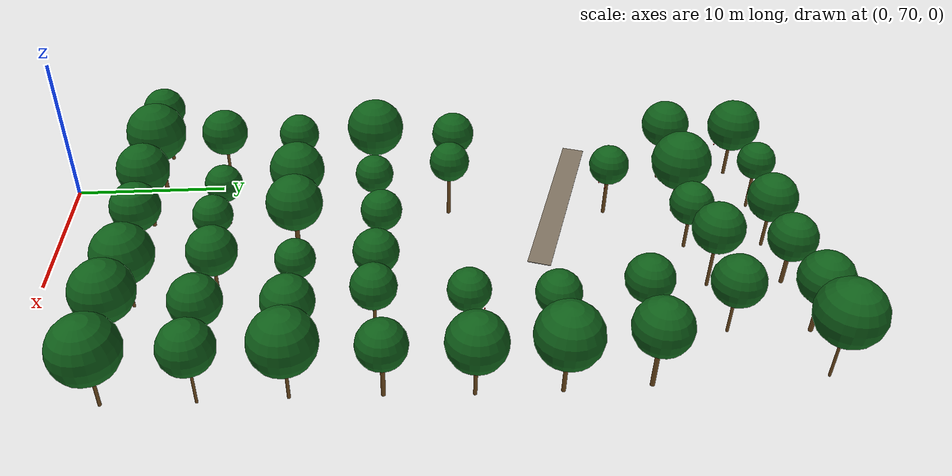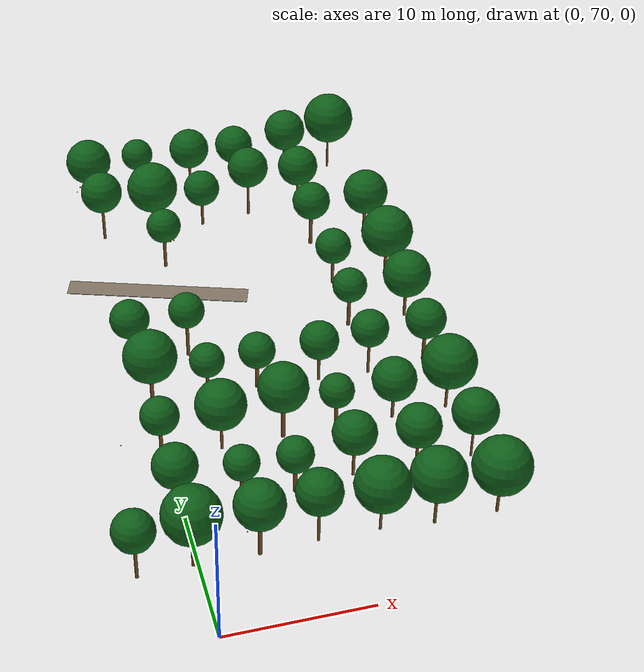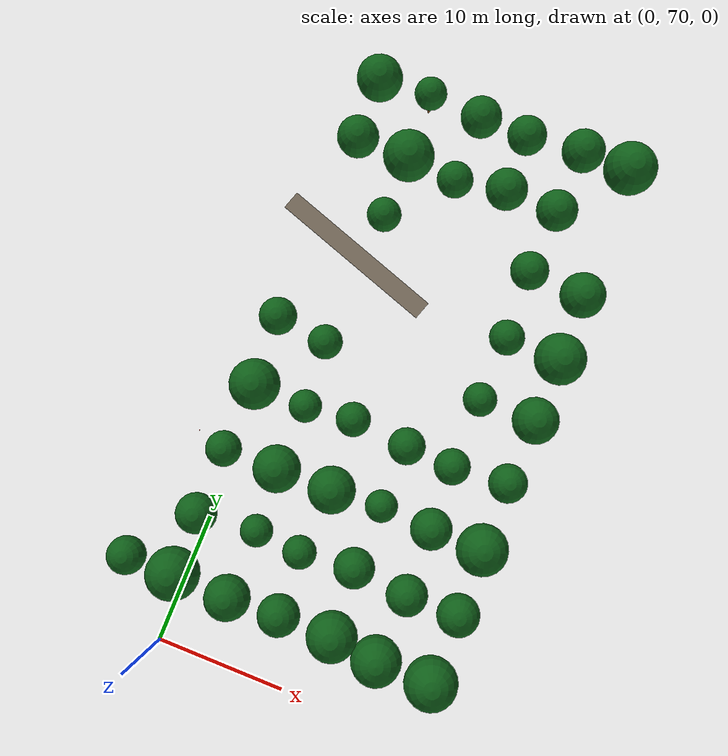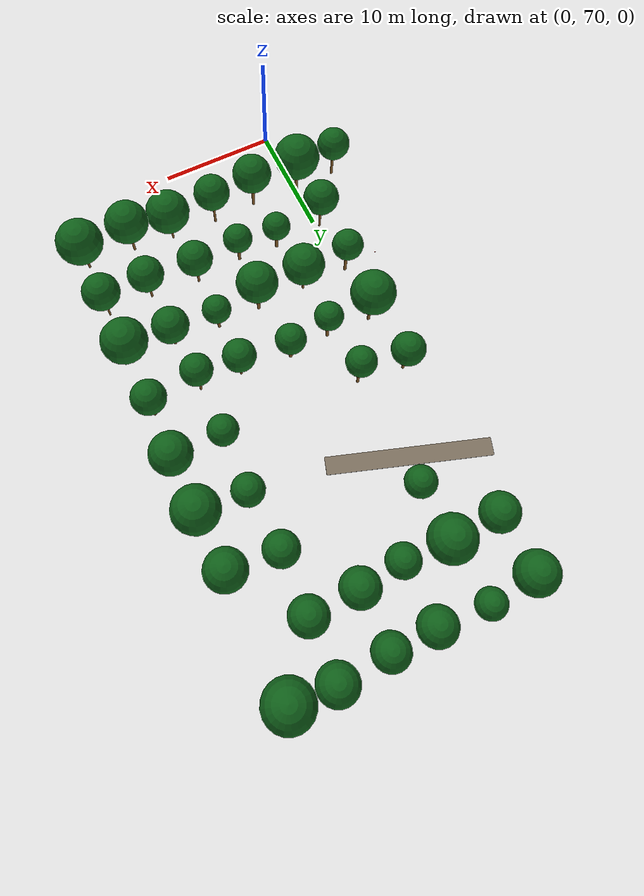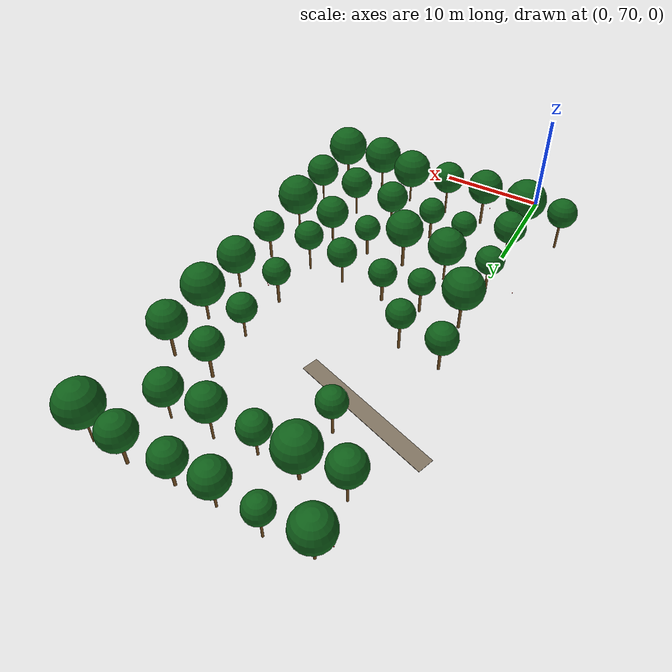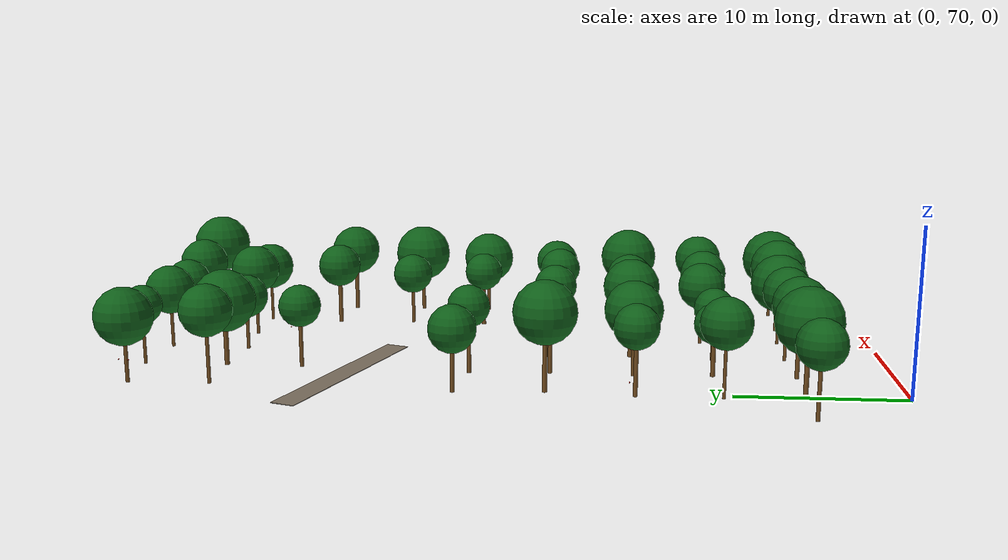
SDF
<sdf version="1.9">
 <world name="cheongsong_orchard">
  <model name="road_52">
   <static>true</static>
   <pose>2.8 103.1 0.02 0 0 2.8174</pose>
   <link name="link">
    <collision name="collision">
     <geometry><box><size>13.6 1.5 0.04</size></box></geometry>
     <surface><friction><ode><mu>0.9</mu><mu2>0.9</mu2></ode></friction></surface>
    </collision>
    <visual name="visual">
     <geometry><box><size>13.6 1.5 0.04</size></box></geometry>
     <material><ambient>0.4 0.35 0.28 1</ambient><diffuse>0.5 0.45 0.38 1</diffuse></material>
    </visual>
   </link>
  </model>
  <model name="apple_tree_1998">
   <static>true</static>
   <pose>-3.95 75.89 0 0 0 0</pose>
   <link name="link">
    <collision name="trunk_col">
     <pose>0 0 1.41 0 0 0</pose>
     <geometry><cylinder><radius>0.113</radius><length>2.83</length></cylinder></geometry>
    </collision>
    <visual name="trunk_vis">
     <pose>0 0 1.41 0 0 0</pose>
     <geometry><cylinder><radius>0.113</radius><length>2.83</length></cylinder></geometry>
     <material><ambient>0.35 0.22 0.08 1</ambient><diffuse>0.45 0.30 0.12 1</diffuse></material>
    </visual>
    <collision name="canopy_col">
     <pose>0 0 4.25 0 0 0</pose>
     <geometry><sphere><radius>1.42</radius></sphere></geometry>
    </collision>
    <visual name="canopy_vis">
     <pose>0 0 4.25 0 0 0</pose>
     <geometry><sphere><radius>1.42</radius></sphere></geometry>
     <material><ambient>0.04 0.28 0.06 1</ambient><diffuse>0.06 0.38 0.10 1</diffuse></material>
    </visual>
   </link>
  </model>
  <model name="apple_tree_1999">
   <static>true</static>
   <pose>-0.29 75.99 0 0 0 0</pose>
   <link name="link">
    <collision name="trunk_col">
     <pose>0 0 1.32 0 0 0</pose>
     <geometry><cylinder><radius>0.143</radius><length>2.63</length></cylinder></geometry>
    </collision>
    <visual name="trunk_vis">
     <pose>0 0 1.32 0 0 0</pose>
     <geometry><cylinder><radius>0.143</radius><length>2.63</length></cylinder></geometry>
     <material><ambient>0.35 0.22 0.08 1</ambient><diffuse>0.45 0.30 0.12 1</diffuse></material>
    </visual>
    <collision name="canopy_col">
     <pose>0 0 4.60 0 0 0</pose>
     <geometry><sphere><radius>1.97</radius></sphere></geometry>
    </collision>
    <visual name="canopy_vis">
     <pose>0 0 4.60 0 0 0</pose>
     <geometry><sphere><radius>1.97</radius></sphere></geometry>
     <material><ambient>0.04 0.28 0.06 1</ambient><diffuse>0.06 0.38 0.10 1</diffuse></material>
    </visual>
   </link>
  </model>
  <model name="apple_tree_2000">
   <static>true</static>
   <pose>3.98 75.85 0 0 0 0</pose>
   <link name="link">
    <collision name="trunk_col">
     <pose>0 0 1.42 0 0 0</pose>
     <geometry><cylinder><radius>0.130</radius><length>2.84</length></cylinder></geometry>
    </collision>
    <visual name="trunk_vis">
     <pose>0 0 1.42 0 0 0</pose>
     <geometry><cylinder><radius>0.130</radius><length>2.84</length></cylinder></geometry>
     <material><ambient>0.35 0.22 0.08 1</ambient><diffuse>0.45 0.30 0.12 1</diffuse></material>
    </visual>
    <collision name="canopy_col">
     <pose>0 0 4.53 0 0 0</pose>
     <geometry><sphere><radius>1.69</radius></sphere></geometry>
    </collision>
    <visual name="canopy_vis">
     <pose>0 0 4.53 0 0 0</pose>
     <geometry><sphere><radius>1.69</radius></sphere></geometry>
     <material><ambient>0.04 0.28 0.06 1</ambient><diffuse>0.06 0.38 0.10 1</diffuse></material>
    </visual>
   </link>
  </model>
  <model name="apple_tree_2001">
   <static>true</static>
   <pose>7.87 76.05 0 0 0 0</pose>
   <link name="link">
    <collision name="trunk_col">
     <pose>0 0 1.44 0 0 0</pose>
     <geometry><cylinder><radius>0.099</radius><length>2.88</length></cylinder></geometry>
    </collision>
    <visual name="trunk_vis">
     <pose>0 0 1.44 0 0 0</pose>
     <geometry><cylinder><radius>0.099</radius><length>2.88</length></cylinder></geometry>
     <material><ambient>0.35 0.22 0.08 1</ambient><diffuse>0.45 0.30 0.12 1</diffuse></material>
    </visual>
    <collision name="canopy_col">
     <pose>0 0 4.44 0 0 0</pose>
     <geometry><sphere><radius>1.56</radius></sphere></geometry>
    </collision>
    <visual name="canopy_vis">
     <pose>0 0 4.44 0 0 0</pose>
     <geometry><sphere><radius>1.56</radius></sphere></geometry>
     <material><ambient>0.04 0.28 0.06 1</ambient><diffuse>0.06 0.38 0.10 1</diffuse></material>
    </visual>
   </link>
  </model>
  <model name="apple_tree_2002">
   <static>true</static>
   <pose>11.98 75.99 0 0 0 0</pose>
   <link name="link">
    <collision name="trunk_col">
     <pose>0 0 1.11 0 0 0</pose>
     <geometry><cylinder><radius>0.090</radius><length>2.22</length></cylinder></geometry>
    </collision>
    <visual name="trunk_vis">
     <pose>0 0 1.11 0 0 0</pose>
     <geometry><cylinder><radius>0.090</radius><length>2.22</length></cylinder></geometry>
     <material><ambient>0.35 0.22 0.08 1</ambient><diffuse>0.45 0.30 0.12 1</diffuse></material>
    </visual>
    <collision name="canopy_col">
     <pose>0 0 4.10 0 0 0</pose>
     <geometry><sphere><radius>1.88</radius></sphere></geometry>
    </collision>
    <visual name="canopy_vis">
     <pose>0 0 4.10 0 0 0</pose>
     <geometry><sphere><radius>1.88</radius></sphere></geometry>
     <material><ambient>0.04 0.28 0.06 1</ambient><diffuse>0.06 0.38 0.10 1</diffuse></material>
    </visual>
   </link>
  </model>
  <model name="apple_tree_2003">
   <static>true</static>
   <pose>15.55 75.66 0 0 0 0</pose>
   <link name="link">
    <collision name="trunk_col">
     <pose>0 0 1.28 0 0 0</pose>
     <geometry><cylinder><radius>0.103</radius><length>2.57</length></cylinder></geometry>
    </collision>
    <visual name="trunk_vis">
     <pose>0 0 1.28 0 0 0</pose>
     <geometry><cylinder><radius>0.103</radius><length>2.57</length></cylinder></geometry>
     <material><ambient>0.35 0.22 0.08 1</ambient><diffuse>0.45 0.30 0.12 1</diffuse></material>
    </visual>
    <collision name="canopy_col">
     <pose>0 0 4.43 0 0 0</pose>
     <geometry><sphere><radius>1.86</radius></sphere></geometry>
    </collision>
    <visual name="canopy_vis">
     <pose>0 0 4.43 0 0 0</pose>
     <geometry><sphere><radius>1.86</radius></sphere></geometry>
     <material><ambient>0.04 0.28 0.06 1</ambient><diffuse>0.06 0.38 0.10 1</diffuse></material>
    </visual>
   </link>
  </model>
  <model name="apple_tree_2004">
   <static>true</static>
   <pose>19.80 75.60 0 0 0 0</pose>
   <link name="link">
    <collision name="trunk_col">
     <pose>0 0 1.11 0 0 0</pose>
     <geometry><cylinder><radius>0.102</radius><length>2.22</length></cylinder></geometry>
    </collision>
    <visual name="trunk_vis">
     <pose>0 0 1.11 0 0 0</pose>
     <geometry><cylinder><radius>0.102</radius><length>2.22</length></cylinder></geometry>
     <material><ambient>0.35 0.22 0.08 1</ambient><diffuse>0.45 0.30 0.12 1</diffuse></material>
    </visual>
    <collision name="canopy_col">
     <pose>0 0 4.20 0 0 0</pose>
     <geometry><sphere><radius>1.99</radius></sphere></geometry>
    </collision>
    <visual name="canopy_vis">
     <pose>0 0 4.20 0 0 0</pose>
     <geometry><sphere><radius>1.99</radius></sphere></geometry>
     <material><ambient>0.04 0.28 0.06 1</ambient><diffuse>0.06 0.38 0.10 1</diffuse></material>
    </visual>
   </link>
  </model>
  <model name="apple_tree_2054">
   <static>true</static>
   <pose>-0.40 80.55 0 0 0 0</pose>
   <link name="link">
    <collision name="trunk_col">
     <pose>0 0 1.44 0 0 0</pose>
     <geometry><cylinder><radius>0.097</radius><length>2.88</length></cylinder></geometry>
    </collision>
    <visual name="trunk_vis">
     <pose>0 0 1.44 0 0 0</pose>
     <geometry><cylinder><radius>0.097</radius><length>2.88</length></cylinder></geometry>
     <material><ambient>0.35 0.22 0.08 1</ambient><diffuse>0.45 0.30 0.12 1</diffuse></material>
    </visual>
    <collision name="canopy_col">
     <pose>0 0 4.40 0 0 0</pose>
     <geometry><sphere><radius>1.52</radius></sphere></geometry>
    </collision>
    <visual name="canopy_vis">
     <pose>0 0 4.40 0 0 0</pose>
     <geometry><sphere><radius>1.52</radius></sphere></geometry>
     <material><ambient>0.04 0.28 0.06 1</ambient><diffuse>0.06 0.38 0.10 1</diffuse></material>
    </visual>
   </link>
  </model>
  <model name="apple_tree_2055">
   <static>true</static>
   <pose>4.01 80.84 0 0 0 0</pose>
   <link name="link">
    <collision name="trunk_col">
     <pose>0 0 1.02 0 0 0</pose>
     <geometry><cylinder><radius>0.137</radius><length>2.04</length></cylinder></geometry>
    </collision>
    <visual name="trunk_vis">
     <pose>0 0 1.02 0 0 0</pose>
     <geometry><cylinder><radius>0.137</radius><length>2.04</length></cylinder></geometry>
     <material><ambient>0.35 0.22 0.08 1</ambient><diffuse>0.45 0.30 0.12 1</diffuse></material>
    </visual>
    <collision name="canopy_col">
     <pose>0 0 3.26 0 0 0</pose>
     <geometry><sphere><radius>1.22</radius></sphere></geometry>
    </collision>
    <visual name="canopy_vis">
     <pose>0 0 3.26 0 0 0</pose>
     <geometry><sphere><radius>1.22</radius></sphere></geometry>
     <material><ambient>0.04 0.28 0.06 1</ambient><diffuse>0.06 0.38 0.10 1</diffuse></material>
    </visual>
   </link>
  </model>
  <model name="apple_tree_2056">
   <static>true</static>
   <pose>7.53 80.58 0 0 0 0</pose>
   <link name="link">
    <collision name="trunk_col">
     <pose>0 0 1.07 0 0 0</pose>
     <geometry><cylinder><radius>0.134</radius><length>2.13</length></cylinder></geometry>
    </collision>
    <visual name="trunk_vis">
     <pose>0 0 1.07 0 0 0</pose>
     <geometry><cylinder><radius>0.134</radius><length>2.13</length></cylinder></geometry>
     <material><ambient>0.35 0.22 0.08 1</ambient><diffuse>0.45 0.30 0.12 1</diffuse></material>
    </visual>
    <collision name="canopy_col">
     <pose>0 0 3.39 0 0 0</pose>
     <geometry><sphere><radius>1.26</radius></sphere></geometry>
    </collision>
    <visual name="canopy_vis">
     <pose>0 0 3.39 0 0 0</pose>
     <geometry><sphere><radius>1.26</radius></sphere></geometry>
     <material><ambient>0.04 0.28 0.06 1</ambient><diffuse>0.06 0.38 0.10 1</diffuse></material>
    </visual>
   </link>
  </model>
  <model name="apple_tree_2057">
   <static>true</static>
   <pose>11.66 81.08 0 0 0 0</pose>
   <link name="link">
    <collision name="trunk_col">
     <pose>0 0 1.18 0 0 0</pose>
     <geometry><cylinder><radius>0.105</radius><length>2.36</length></cylinder></geometry>
    </collision>
    <visual name="trunk_vis">
     <pose>0 0 1.18 0 0 0</pose>
     <geometry><cylinder><radius>0.105</radius><length>2.36</length></cylinder></geometry>
     <material><ambient>0.35 0.22 0.08 1</ambient><diffuse>0.45 0.30 0.12 1</diffuse></material>
    </visual>
    <collision name="canopy_col">
     <pose>0 0 3.88 0 0 0</pose>
     <geometry><sphere><radius>1.52</radius></sphere></geometry>
    </collision>
    <visual name="canopy_vis">
     <pose>0 0 3.88 0 0 0</pose>
     <geometry><sphere><radius>1.52</radius></sphere></geometry>
     <material><ambient>0.04 0.28 0.06 1</ambient><diffuse>0.06 0.38 0.10 1</diffuse></material>
    </visual>
   </link>
  </model>
  <model name="apple_tree_2058">
   <static>true</static>
   <pose>15.93 80.69 0 0 0 0</pose>
   <link name="link">
    <collision name="trunk_col">
     <pose>0 0 1.16 0 0 0</pose>
     <geometry><cylinder><radius>0.095</radius><length>2.33</length></cylinder></geometry>
    </collision>
    <visual name="trunk_vis">
     <pose>0 0 1.16 0 0 0</pose>
     <geometry><cylinder><radius>0.095</radius><length>2.33</length></cylinder></geometry>
     <material><ambient>0.35 0.22 0.08 1</ambient><diffuse>0.45 0.30 0.12 1</diffuse></material>
    </visual>
    <collision name="canopy_col">
     <pose>0 0 3.87 0 0 0</pose>
     <geometry><sphere><radius>1.54</radius></sphere></geometry>
    </collision>
    <visual name="canopy_vis">
     <pose>0 0 3.87 0 0 0</pose>
     <geometry><sphere><radius>1.54</radius></sphere></geometry>
     <material><ambient>0.04 0.28 0.06 1</ambient><diffuse>0.06 0.38 0.10 1</diffuse></material>
    </visual>
   </link>
  </model>
  <model name="apple_tree_2059">
   <static>true</static>
   <pose>19.86 80.80 0 0 0 0</pose>
   <link name="link">
    <collision name="trunk_col">
     <pose>0 0 1.27 0 0 0</pose>
     <geometry><cylinder><radius>0.083</radius><length>2.55</length></cylinder></geometry>
    </collision>
    <visual name="trunk_vis">
     <pose>0 0 1.27 0 0 0</pose>
     <geometry><cylinder><radius>0.083</radius><length>2.55</length></cylinder></geometry>
     <material><ambient>0.35 0.22 0.08 1</ambient><diffuse>0.45 0.30 0.12 1</diffuse></material>
    </visual>
    <collision name="canopy_col">
     <pose>0 0 4.14 0 0 0</pose>
     <geometry><sphere><radius>1.59</radius></sphere></geometry>
    </collision>
    <visual name="canopy_vis">
     <pose>0 0 4.14 0 0 0</pose>
     <geometry><sphere><radius>1.59</radius></sphere></geometry>
     <material><ambient>0.04 0.28 0.06 1</ambient><diffuse>0.06 0.38 0.10 1</diffuse></material>
    </visual>
   </link>
  </model>
  <model name="apple_tree_2111">
   <static>true</static>
   <pose>-0.40 85.56 0 0 0 0</pose>
   <link name="link">
    <collision name="trunk_col">
     <pose>0 0 1.38 0 0 0</pose>
     <geometry><cylinder><radius>0.128</radius><length>2.77</length></cylinder></geometry>
    </collision>
    <visual name="trunk_vis">
     <pose>0 0 1.38 0 0 0</pose>
     <geometry><cylinder><radius>0.128</radius><length>2.77</length></cylinder></geometry>
     <material><ambient>0.35 0.22 0.08 1</ambient><diffuse>0.45 0.30 0.12 1</diffuse></material>
    </visual>
    <collision name="canopy_col">
     <pose>0 0 4.10 0 0 0</pose>
     <geometry><sphere><radius>1.33</radius></sphere></geometry>
    </collision>
    <visual name="canopy_vis">
     <pose>0 0 4.10 0 0 0</pose>
     <geometry><sphere><radius>1.33</radius></sphere></geometry>
     <material><ambient>0.04 0.28 0.06 1</ambient><diffuse>0.06 0.38 0.10 1</diffuse></material>
    </visual>
   </link>
  </model>
  <model name="apple_tree_2112">
   <static>true</static>
   <pose>3.75 85.64 0 0 0 0</pose>
   <link name="link">
    <collision name="trunk_col">
     <pose>0 0 1.15 0 0 0</pose>
     <geometry><cylinder><radius>0.099</radius><length>2.29</length></cylinder></geometry>
    </collision>
    <visual name="trunk_vis">
     <pose>0 0 1.15 0 0 0</pose>
     <geometry><cylinder><radius>0.099</radius><length>2.29</length></cylinder></geometry>
     <material><ambient>0.35 0.22 0.08 1</ambient><diffuse>0.45 0.30 0.12 1</diffuse></material>
    </visual>
    <collision name="canopy_col">
     <pose>0 0 4.07 0 0 0</pose>
     <geometry><sphere><radius>1.77</radius></sphere></geometry>
    </collision>
    <visual name="canopy_vis">
     <pose>0 0 4.07 0 0 0</pose>
     <geometry><sphere><radius>1.77</radius></sphere></geometry>
     <material><ambient>0.04 0.28 0.06 1</ambient><diffuse>0.06 0.38 0.10 1</diffuse></material>
    </visual>
   </link>
  </model>
  <model name="apple_tree_2113">
   <static>true</static>
   <pose>8.05 85.74 0 0 0 0</pose>
   <link name="link">
    <collision name="trunk_col">
     <pose>0 0 1.40 0 0 0</pose>
     <geometry><cylinder><radius>0.147</radius><length>2.81</length></cylinder></geometry>
    </collision>
    <visual name="trunk_vis">
     <pose>0 0 1.40 0 0 0</pose>
     <geometry><cylinder><radius>0.147</radius><length>2.81</length></cylinder></geometry>
     <material><ambient>0.35 0.22 0.08 1</ambient><diffuse>0.45 0.30 0.12 1</diffuse></material>
    </visual>
    <collision name="canopy_col">
     <pose>0 0 4.55 0 0 0</pose>
     <geometry><sphere><radius>1.75</radius></sphere></geometry>
    </collision>
    <visual name="canopy_vis">
     <pose>0 0 4.55 0 0 0</pose>
     <geometry><sphere><radius>1.75</radius></sphere></geometry>
     <material><ambient>0.04 0.28 0.06 1</ambient><diffuse>0.06 0.38 0.10 1</diffuse></material>
    </visual>
   </link>
  </model>
  <model name="apple_tree_2114">
   <static>true</static>
   <pose>11.85 85.90 0 0 0 0</pose>
   <link name="link">
    <collision name="trunk_col">
     <pose>0 0 1.01 0 0 0</pose>
     <geometry><cylinder><radius>0.130</radius><length>2.01</length></cylinder></geometry>
    </collision>
    <visual name="trunk_vis">
     <pose>0 0 1.01 0 0 0</pose>
     <geometry><cylinder><radius>0.130</radius><length>2.01</length></cylinder></geometry>
     <material><ambient>0.35 0.22 0.08 1</ambient><diffuse>0.45 0.30 0.12 1</diffuse></material>
    </visual>
    <collision name="canopy_col">
     <pose>0 0 3.23 0 0 0</pose>
     <geometry><sphere><radius>1.22</radius></sphere></geometry>
    </collision>
    <visual name="canopy_vis">
     <pose>0 0 3.23 0 0 0</pose>
     <geometry><sphere><radius>1.22</radius></sphere></geometry>
     <material><ambient>0.04 0.28 0.06 1</ambient><diffuse>0.06 0.38 0.10 1</diffuse></material>
    </visual>
   </link>
  </model>
  <model name="apple_tree_2115">
   <static>true</static>
   <pose>15.85 85.73 0 0 0 0</pose>
   <link name="link">
    <collision name="trunk_col">
     <pose>0 0 0.98 0 0 0</pose>
     <geometry><cylinder><radius>0.111</radius><length>1.97</length></cylinder></geometry>
    </collision>
    <visual name="trunk_vis">
     <pose>0 0 0.98 0 0 0</pose>
     <geometry><cylinder><radius>0.111</radius><length>1.97</length></cylinder></geometry>
     <material><ambient>0.35 0.22 0.08 1</ambient><diffuse>0.45 0.30 0.12 1</diffuse></material>
    </visual>
    <collision name="canopy_col">
     <pose>0 0 3.53 0 0 0</pose>
     <geometry><sphere><radius>1.56</radius></sphere></geometry>
    </collision>
    <visual name="canopy_vis">
     <pose>0 0 3.53 0 0 0</pose>
     <geometry><sphere><radius>1.56</radius></sphere></geometry>
     <material><ambient>0.04 0.28 0.06 1</ambient><diffuse>0.06 0.38 0.10 1</diffuse></material>
    </visual>
   </link>
  </model>
  <model name="apple_tree_2116">
   <static>true</static>
   <pose>19.76 85.77 0 0 0 0</pose>
   <link name="link">
    <collision name="trunk_col">
     <pose>0 0 1.14 0 0 0</pose>
     <geometry><cylinder><radius>0.099</radius><length>2.29</length></cylinder></geometry>
    </collision>
    <visual name="trunk_vis">
     <pose>0 0 1.14 0 0 0</pose>
     <geometry><cylinder><radius>0.099</radius><length>2.29</length></cylinder></geometry>
     <material><ambient>0.35 0.22 0.08 1</ambient><diffuse>0.45 0.30 0.12 1</diffuse></material>
    </visual>
    <collision name="canopy_col">
     <pose>0 0 4.22 0 0 0</pose>
     <geometry><sphere><radius>1.93</radius></sphere></geometry>
    </collision>
    <visual name="canopy_vis">
     <pose>0 0 4.22 0 0 0</pose>
     <geometry><sphere><radius>1.93</radius></sphere></geometry>
     <material><ambient>0.04 0.28 0.06 1</ambient><diffuse>0.06 0.38 0.10 1</diffuse></material>
    </visual>
   </link>
  </model>
  <model name="apple_tree_2167">
   <static>true</static>
   <pose>-0.00 90.76 0 0 0 0</pose>
   <link name="link">
    <collision name="trunk_col">
     <pose>0 0 1.43 0 0 0</pose>
     <geometry><cylinder><radius>0.136</radius><length>2.86</length></cylinder></geometry>
    </collision>
    <visual name="trunk_vis">
     <pose>0 0 1.43 0 0 0</pose>
     <geometry><cylinder><radius>0.136</radius><length>2.86</length></cylinder></geometry>
     <material><ambient>0.35 0.22 0.08 1</ambient><diffuse>0.45 0.30 0.12 1</diffuse></material>
    </visual>
    <collision name="canopy_col">
     <pose>0 0 4.73 0 0 0</pose>
     <geometry><sphere><radius>1.88</radius></sphere></geometry>
    </collision>
    <visual name="canopy_vis">
     <pose>0 0 4.73 0 0 0</pose>
     <geometry><sphere><radius>1.88</radius></sphere></geometry>
     <material><ambient>0.04 0.28 0.06 1</ambient><diffuse>0.06 0.38 0.10 1</diffuse></material>
    </visual>
   </link>
  </model>
  <model name="apple_tree_2168">
   <static>true</static>
   <pose>3.91 90.64 0 0 0 0</pose>
   <link name="link">
    <collision name="trunk_col">
     <pose>0 0 1.20 0 0 0</pose>
     <geometry><cylinder><radius>0.129</radius><length>2.40</length></cylinder></geometry>
    </collision>
    <visual name="trunk_vis">
     <pose>0 0 1.20 0 0 0</pose>
     <geometry><cylinder><radius>0.129</radius><length>2.40</length></cylinder></geometry>
     <material><ambient>0.35 0.22 0.08 1</ambient><diffuse>0.45 0.30 0.12 1</diffuse></material>
    </visual>
    <collision name="canopy_col">
     <pose>0 0 3.63 0 0 0</pose>
     <geometry><sphere><radius>1.23</radius></sphere></geometry>
    </collision>
    <visual name="canopy_vis">
     <pose>0 0 3.63 0 0 0</pose>
     <geometry><sphere><radius>1.23</radius></sphere></geometry>
     <material><ambient>0.04 0.28 0.06 1</ambient><diffuse>0.06 0.38 0.10 1</diffuse></material>
    </visual>
   </link>
  </model>
  <model name="apple_tree_2169">
   <static>true</static>
   <pose>7.55 91.04 0 0 0 0</pose>
   <link name="link">
    <collision name="trunk_col">
     <pose>0 0 1.05 0 0 0</pose>
     <geometry><cylinder><radius>0.150</radius><length>2.09</length></cylinder></geometry>
    </collision>
    <visual name="trunk_vis">
     <pose>0 0 1.05 0 0 0</pose>
     <geometry><cylinder><radius>0.150</radius><length>2.09</length></cylinder></geometry>
     <material><ambient>0.35 0.22 0.08 1</ambient><diffuse>0.45 0.30 0.12 1</diffuse></material>
    </visual>
    <collision name="canopy_col">
     <pose>0 0 3.39 0 0 0</pose>
     <geometry><sphere><radius>1.30</radius></sphere></geometry>
    </collision>
    <visual name="canopy_vis">
     <pose>0 0 3.39 0 0 0</pose>
     <geometry><sphere><radius>1.30</radius></sphere></geometry>
     <material><ambient>0.04 0.28 0.06 1</ambient><diffuse>0.06 0.38 0.10 1</diffuse></material>
    </visual>
   </link>
  </model>
  <model name="apple_tree_2170">
   <static>true</static>
   <pose>11.94 90.68 0 0 0 0</pose>
   <link name="link">
    <collision name="trunk_col">
     <pose>0 0 1.14 0 0 0</pose>
     <geometry><cylinder><radius>0.102</radius><length>2.27</length></cylinder></geometry>
    </collision>
    <visual name="trunk_vis">
     <pose>0 0 1.14 0 0 0</pose>
     <geometry><cylinder><radius>0.102</radius><length>2.27</length></cylinder></geometry>
     <material><ambient>0.35 0.22 0.08 1</ambient><diffuse>0.45 0.30 0.12 1</diffuse></material>
    </visual>
    <collision name="canopy_col">
     <pose>0 0 3.67 0 0 0</pose>
     <geometry><sphere><radius>1.39</radius></sphere></geometry>
    </collision>
    <visual name="canopy_vis">
     <pose>0 0 3.67 0 0 0</pose>
     <geometry><sphere><radius>1.39</radius></sphere></geometry>
     <material><ambient>0.04 0.28 0.06 1</ambient><diffuse>0.06 0.38 0.10 1</diffuse></material>
    </visual>
   </link>
  </model>
  <model name="apple_tree_2171">
   <static>true</static>
   <pose>15.55 90.53 0 0 0 0</pose>
   <link name="link">
    <collision name="trunk_col">
     <pose>0 0 1.39 0 0 0</pose>
     <geometry><cylinder><radius>0.098</radius><length>2.78</length></cylinder></geometry>
    </collision>
    <visual name="trunk_vis">
     <pose>0 0 1.39 0 0 0</pose>
     <geometry><cylinder><radius>0.098</radius><length>2.78</length></cylinder></geometry>
     <material><ambient>0.35 0.22 0.08 1</ambient><diffuse>0.45 0.30 0.12 1</diffuse></material>
    </visual>
    <collision name="canopy_col">
     <pose>0 0 4.13 0 0 0</pose>
     <geometry><sphere><radius>1.35</radius></sphere></geometry>
    </collision>
    <visual name="canopy_vis">
     <pose>0 0 4.13 0 0 0</pose>
     <geometry><sphere><radius>1.35</radius></sphere></geometry>
     <material><ambient>0.04 0.28 0.06 1</ambient><diffuse>0.06 0.38 0.10 1</diffuse></material>
    </visual>
   </link>
  </model>
  <model name="apple_tree_2172">
   <static>true</static>
   <pose>19.81 90.91 0 0 0 0</pose>
   <link name="link">
    <collision name="trunk_col">
     <pose>0 0 1.17 0 0 0</pose>
     <geometry><cylinder><radius>0.130</radius><length>2.34</length></cylinder></geometry>
    </collision>
    <visual name="trunk_vis">
     <pose>0 0 1.17 0 0 0</pose>
     <geometry><cylinder><radius>0.130</radius><length>2.34</length></cylinder></geometry>
     <material><ambient>0.35 0.22 0.08 1</ambient><diffuse>0.45 0.30 0.12 1</diffuse></material>
    </visual>
    <collision name="canopy_col">
     <pose>0 0 3.80 0 0 0</pose>
     <geometry><sphere><radius>1.46</radius></sphere></geometry>
    </collision>
    <visual name="canopy_vis">
     <pose>0 0 3.80 0 0 0</pose>
     <geometry><sphere><radius>1.46</radius></sphere></geometry>
     <material><ambient>0.04 0.28 0.06 1</ambient><diffuse>0.06 0.38 0.10 1</diffuse></material>
    </visual>
   </link>
  </model>
  <model name="apple_tree_2208">
   <static>true</static>
   <pose>-0.47 96.06 0 0 0 0</pose>
   <link name="link">
    <collision name="trunk_col">
     <pose>0 0 1.18 0 0 0</pose>
     <geometry><cylinder><radius>0.126</radius><length>2.36</length></cylinder></geometry>
    </collision>
    <visual name="trunk_vis">
     <pose>0 0 1.18 0 0 0</pose>
     <geometry><cylinder><radius>0.126</radius><length>2.36</length></cylinder></geometry>
     <material><ambient>0.35 0.22 0.08 1</ambient><diffuse>0.45 0.30 0.12 1</diffuse></material>
    </visual>
    <collision name="canopy_col">
     <pose>0 0 3.77 0 0 0</pose>
     <geometry><sphere><radius>1.42</radius></sphere></geometry>
    </collision>
    <visual name="canopy_vis">
     <pose>0 0 3.77 0 0 0</pose>
     <geometry><sphere><radius>1.42</radius></sphere></geometry>
     <material><ambient>0.04 0.28 0.06 1</ambient><diffuse>0.06 0.38 0.10 1</diffuse></material>
    </visual>
   </link>
  </model>
  <model name="apple_tree_2209">
   <static>true</static>
   <pose>3.54 95.55 0 0 0 0</pose>
   <link name="link">
    <collision name="trunk_col">
     <pose>0 0 1.44 0 0 0</pose>
     <geometry><cylinder><radius>0.121</radius><length>2.88</length></cylinder></geometry>
    </collision>
    <visual name="trunk_vis">
     <pose>0 0 1.44 0 0 0</pose>
     <geometry><cylinder><radius>0.121</radius><length>2.88</length></cylinder></geometry>
     <material><ambient>0.35 0.22 0.08 1</ambient><diffuse>0.45 0.30 0.12 1</diffuse></material>
    </visual>
    <collision name="canopy_col">
     <pose>0 0 4.16 0 0 0</pose>
     <geometry><sphere><radius>1.29</radius></sphere></geometry>
    </collision>
    <visual name="canopy_vis">
     <pose>0 0 4.16 0 0 0</pose>
     <geometry><sphere><radius>1.29</radius></sphere></geometry>
     <material><ambient>0.04 0.28 0.06 1</ambient><diffuse>0.06 0.38 0.10 1</diffuse></material>
    </visual>
   </link>
  </model>
  <model name="apple_tree_2210">
   <static>true</static>
   <pose>15.67 95.87 0 0 0 0</pose>
   <link name="link">
    <collision name="trunk_col">
     <pose>0 0 1.25 0 0 0</pose>
     <geometry><cylinder><radius>0.136</radius><length>2.50</length></cylinder></geometry>
    </collision>
    <visual name="trunk_vis">
     <pose>0 0 1.25 0 0 0</pose>
     <geometry><cylinder><radius>0.136</radius><length>2.50</length></cylinder></geometry>
     <material><ambient>0.35 0.22 0.08 1</ambient><diffuse>0.45 0.30 0.12 1</diffuse></material>
    </visual>
    <collision name="canopy_col">
     <pose>0 0 3.76 0 0 0</pose>
     <geometry><sphere><radius>1.27</radius></sphere></geometry>
    </collision>
    <visual name="canopy_vis">
     <pose>0 0 3.76 0 0 0</pose>
     <geometry><sphere><radius>1.27</radius></sphere></geometry>
     <material><ambient>0.04 0.28 0.06 1</ambient><diffuse>0.06 0.38 0.10 1</diffuse></material>
    </visual>
   </link>
  </model>
  <model name="apple_tree_2211">
   <static>true</static>
   <pose>20.00 95.92 0 0 0 0</pose>
   <link name="link">
    <collision name="trunk_col">
     <pose>0 0 1.09 0 0 0</pose>
     <geometry><cylinder><radius>0.109</radius><length>2.18</length></cylinder></geometry>
    </collision>
    <visual name="trunk_vis">
     <pose>0 0 1.09 0 0 0</pose>
     <geometry><cylinder><radius>0.109</radius><length>2.18</length></cylinder></geometry>
     <material><ambient>0.35 0.22 0.08 1</ambient><diffuse>0.45 0.30 0.12 1</diffuse></material>
    </visual>
    <collision name="canopy_col">
     <pose>0 0 3.93 0 0 0</pose>
     <geometry><sphere><radius>1.75</radius></sphere></geometry>
    </collision>
    <visual name="canopy_vis">
     <pose>0 0 3.93 0 0 0</pose>
     <geometry><sphere><radius>1.75</radius></sphere></geometry>
     <material><ambient>0.04 0.28 0.06 1</ambient><diffuse>0.06 0.38 0.10 1</diffuse></material>
    </visual>
   </link>
  </model>
  <model name="apple_tree_2245">
   <static>true</static>
   <pose>15.87 100.91 0 0 0 0</pose>
   <link name="link">
    <collision name="trunk_col">
     <pose>0 0 1.08 0 0 0</pose>
     <geometry><cylinder><radius>0.111</radius><length>2.16</length></cylinder></geometry>
    </collision>
    <visual name="trunk_vis">
     <pose>0 0 1.08 0 0 0</pose>
     <geometry><cylinder><radius>0.111</radius><length>2.16</length></cylinder></geometry>
     <material><ambient>0.35 0.22 0.08 1</ambient><diffuse>0.45 0.30 0.12 1</diffuse></material>
    </visual>
    <collision name="canopy_col">
     <pose>0 0 3.50 0 0 0</pose>
     <geometry><sphere><radius>1.34</radius></sphere></geometry>
    </collision>
    <visual name="canopy_vis">
     <pose>0 0 3.50 0 0 0</pose>
     <geometry><sphere><radius>1.34</radius></sphere></geometry>
     <material><ambient>0.04 0.28 0.06 1</ambient><diffuse>0.06 0.38 0.10 1</diffuse></material>
    </visual>
   </link>
  </model>
  <model name="apple_tree_2246">
   <static>true</static>
   <pose>20.01 100.78 0 0 0 0</pose>
   <link name="link">
    <collision name="trunk_col">
     <pose>0 0 1.13 0 0 0</pose>
     <geometry><cylinder><radius>0.122</radius><length>2.26</length></cylinder></geometry>
    </collision>
    <visual name="trunk_vis">
     <pose>0 0 1.13 0 0 0</pose>
     <geometry><cylinder><radius>0.122</radius><length>2.26</length></cylinder></geometry>
     <material><ambient>0.35 0.22 0.08 1</ambient><diffuse>0.45 0.30 0.12 1</diffuse></material>
    </visual>
    <collision name="canopy_col">
     <pose>0 0 4.20 0 0 0</pose>
     <geometry><sphere><radius>1.94</radius></sphere></geometry>
    </collision>
    <visual name="canopy_vis">
     <pose>0 0 4.20 0 0 0</pose>
     <geometry><sphere><radius>1.94</radius></sphere></geometry>
     <material><ambient>0.04 0.28 0.06 1</ambient><diffuse>0.06 0.38 0.10 1</diffuse></material>
    </visual>
   </link>
  </model>
  <model name="apple_tree_2290">
   <static>true</static>
   <pose>4.00 106.03 0 0 0 0</pose>
   <link name="link">
    <collision name="trunk_col">
     <pose>0 0 1.29 0 0 0</pose>
     <geometry><cylinder><radius>0.120</radius><length>2.57</length></cylinder></geometry>
    </collision>
    <visual name="trunk_vis">
     <pose>0 0 1.29 0 0 0</pose>
     <geometry><cylinder><radius>0.120</radius><length>2.57</length></cylinder></geometry>
     <material><ambient>0.35 0.22 0.08 1</ambient><diffuse>0.45 0.30 0.12 1</diffuse></material>
    </visual>
    <collision name="canopy_col">
     <pose>0 0 3.86 0 0 0</pose>
     <geometry><sphere><radius>1.29</radius></sphere></geometry>
    </collision>
    <visual name="canopy_vis">
     <pose>0 0 3.86 0 0 0</pose>
     <geometry><sphere><radius>1.29</radius></sphere></geometry>
     <material><ambient>0.04 0.28 0.06 1</ambient><diffuse>0.06 0.38 0.10 1</diffuse></material>
    </visual>
   </link>
  </model>
  <model name="apple_tree_2291">
   <static>true</static>
   <pose>15.57 106.07 0 0 0 0</pose>
   <link name="link">
    <collision name="trunk_col">
     <pose>0 0 1.31 0 0 0</pose>
     <geometry><cylinder><radius>0.140</radius><length>2.63</length></cylinder></geometry>
    </collision>
    <visual name="trunk_vis">
     <pose>0 0 1.31 0 0 0</pose>
     <geometry><cylinder><radius>0.140</radius><length>2.63</length></cylinder></geometry>
     <material><ambient>0.35 0.22 0.08 1</ambient><diffuse>0.45 0.30 0.12 1</diffuse></material>
    </visual>
    <collision name="canopy_col">
     <pose>0 0 4.06 0 0 0</pose>
     <geometry><sphere><radius>1.44</radius></sphere></geometry>
    </collision>
    <visual name="canopy_vis">
     <pose>0 0 4.06 0 0 0</pose>
     <geometry><sphere><radius>1.44</radius></sphere></geometry>
     <material><ambient>0.04 0.28 0.06 1</ambient><diffuse>0.06 0.38 0.10 1</diffuse></material>
    </visual>
   </link>
  </model>
  <model name="apple_tree_2292">
   <static>true</static>
   <pose>19.82 105.75 0 0 0 0</pose>
   <link name="link">
    <collision name="trunk_col">
     <pose>0 0 1.34 0 0 0</pose>
     <geometry><cylinder><radius>0.138</radius><length>2.68</length></cylinder></geometry>
    </collision>
    <visual name="trunk_vis">
     <pose>0 0 1.34 0 0 0</pose>
     <geometry><cylinder><radius>0.138</radius><length>2.68</length></cylinder></geometry>
     <material><ambient>0.35 0.22 0.08 1</ambient><diffuse>0.45 0.30 0.12 1</diffuse></material>
    </visual>
    <collision name="canopy_col">
     <pose>0 0 4.38 0 0 0</pose>
     <geometry><sphere><radius>1.70</radius></sphere></geometry>
    </collision>
    <visual name="canopy_vis">
     <pose>0 0 4.38 0 0 0</pose>
     <geometry><sphere><radius>1.70</radius></sphere></geometry>
     <material><ambient>0.04 0.28 0.06 1</ambient><diffuse>0.06 0.38 0.10 1</diffuse></material>
    </visual>
   </link>
  </model>
  <model name="apple_tree_2331">
   <static>true</static>
   <pose>0.07 110.63 0 0 0 0</pose>
   <link name="link">
    <collision name="trunk_col">
     <pose>0 0 1.42 0 0 0</pose>
     <geometry><cylinder><radius>0.108</radius><length>2.84</length></cylinder></geometry>
    </collision>
    <visual name="trunk_vis">
     <pose>0 0 1.42 0 0 0</pose>
     <geometry><cylinder><radius>0.108</radius><length>2.84</length></cylinder></geometry>
     <material><ambient>0.35 0.22 0.08 1</ambient><diffuse>0.45 0.30 0.12 1</diffuse></material>
    </visual>
    <collision name="canopy_col">
     <pose>0 0 4.42 0 0 0</pose>
     <geometry><sphere><radius>1.57</radius></sphere></geometry>
    </collision>
    <visual name="canopy_vis">
     <pose>0 0 4.42 0 0 0</pose>
     <geometry><sphere><radius>1.57</radius></sphere></geometry>
     <material><ambient>0.04 0.28 0.06 1</ambient><diffuse>0.06 0.38 0.10 1</diffuse></material>
    </visual>
   </link>
  </model>
  <model name="apple_tree_2332">
   <static>true</static>
   <pose>4.07 110.79 0 0 0 0</pose>
   <link name="link">
    <collision name="trunk_col">
     <pose>0 0 1.07 0 0 0</pose>
     <geometry><cylinder><radius>0.150</radius><length>2.15</length></cylinder></geometry>
    </collision>
    <visual name="trunk_vis">
     <pose>0 0 1.07 0 0 0</pose>
     <geometry><cylinder><radius>0.150</radius><length>2.15</length></cylinder></geometry>
     <material><ambient>0.35 0.22 0.08 1</ambient><diffuse>0.45 0.30 0.12 1</diffuse></material>
    </visual>
    <collision name="canopy_col">
     <pose>0 0 4.08 0 0 0</pose>
     <geometry><sphere><radius>1.93</radius></sphere></geometry>
    </collision>
    <visual name="canopy_vis">
     <pose>0 0 4.08 0 0 0</pose>
     <geometry><sphere><radius>1.93</radius></sphere></geometry>
     <material><ambient>0.04 0.28 0.06 1</ambient><diffuse>0.06 0.38 0.10 1</diffuse></material>
    </visual>
   </link>
  </model>
  <model name="apple_tree_2333">
   <static>true</static>
   <pose>7.92 110.56 0 0 0 0</pose>
   <link name="link">
    <collision name="trunk_col">
     <pose>0 0 1.05 0 0 0</pose>
     <geometry><cylinder><radius>0.107</radius><length>2.11</length></cylinder></geometry>
    </collision>
    <visual name="trunk_vis">
     <pose>0 0 1.05 0 0 0</pose>
     <geometry><cylinder><radius>0.107</radius><length>2.11</length></cylinder></geometry>
     <material><ambient>0.35 0.22 0.08 1</ambient><diffuse>0.45 0.30 0.12 1</diffuse></material>
    </visual>
    <collision name="canopy_col">
     <pose>0 0 3.48 0 0 0</pose>
     <geometry><sphere><radius>1.38</radius></sphere></geometry>
    </collision>
    <visual name="canopy_vis">
     <pose>0 0 3.48 0 0 0</pose>
     <geometry><sphere><radius>1.38</radius></sphere></geometry>
     <material><ambient>0.04 0.28 0.06 1</ambient><diffuse>0.06 0.38 0.10 1</diffuse></material>
    </visual>
   </link>
  </model>
  <model name="apple_tree_2334">
   <static>true</static>
   <pose>11.76 111.01 0 0 0 0</pose>
   <link name="link">
    <collision name="trunk_col">
     <pose>0 0 1.45 0 0 0</pose>
     <geometry><cylinder><radius>0.102</radius><length>2.91</length></cylinder></geometry>
    </collision>
    <visual name="trunk_vis">
     <pose>0 0 1.45 0 0 0</pose>
     <geometry><cylinder><radius>0.102</radius><length>2.91</length></cylinder></geometry>
     <material><ambient>0.35 0.22 0.08 1</ambient><diffuse>0.45 0.30 0.12 1</diffuse></material>
    </visual>
    <collision name="canopy_col">
     <pose>0 0 4.48 0 0 0</pose>
     <geometry><sphere><radius>1.57</radius></sphere></geometry>
    </collision>
    <visual name="canopy_vis">
     <pose>0 0 4.48 0 0 0</pose>
     <geometry><sphere><radius>1.57</radius></sphere></geometry>
     <material><ambient>0.04 0.28 0.06 1</ambient><diffuse>0.06 0.38 0.10 1</diffuse></material>
    </visual>
   </link>
  </model>
  <model name="apple_tree_2335">
   <static>true</static>
   <pose>15.84 111.10 0 0 0 0</pose>
   <link name="link">
    <collision name="trunk_col">
     <pose>0 0 1.16 0 0 0</pose>
     <geometry><cylinder><radius>0.093</radius><length>2.32</length></cylinder></geometry>
    </collision>
    <visual name="trunk_vis">
     <pose>0 0 1.16 0 0 0</pose>
     <geometry><cylinder><radius>0.093</radius><length>2.32</length></cylinder></geometry>
     <material><ambient>0.35 0.22 0.08 1</ambient><diffuse>0.45 0.30 0.12 1</diffuse></material>
    </visual>
    <collision name="canopy_col">
     <pose>0 0 3.87 0 0 0</pose>
     <geometry><sphere><radius>1.56</radius></sphere></geometry>
    </collision>
    <visual name="canopy_vis">
     <pose>0 0 3.87 0 0 0</pose>
     <geometry><sphere><radius>1.56</radius></sphere></geometry>
     <material><ambient>0.04 0.28 0.06 1</ambient><diffuse>0.06 0.38 0.10 1</diffuse></material>
    </visual>
   </link>
  </model>
  <model name="apple_tree_2370">
   <static>true</static>
   <pose>-0.15 115.52 0 0 0 0</pose>
   <link name="link">
    <collision name="trunk_col">
     <pose>0 0 1.13 0 0 0</pose>
     <geometry><cylinder><radius>0.114</radius><length>2.26</length></cylinder></geometry>
    </collision>
    <visual name="trunk_vis">
     <pose>0 0 1.13 0 0 0</pose>
     <geometry><cylinder><radius>0.114</radius><length>2.26</length></cylinder></geometry>
     <material><ambient>0.35 0.22 0.08 1</ambient><diffuse>0.45 0.30 0.12 1</diffuse></material>
    </visual>
    <collision name="canopy_col">
     <pose>0 0 4.01 0 0 0</pose>
     <geometry><sphere><radius>1.74</radius></sphere></geometry>
    </collision>
    <visual name="canopy_vis">
     <pose>0 0 4.01 0 0 0</pose>
     <geometry><sphere><radius>1.74</radius></sphere></geometry>
     <material><ambient>0.04 0.28 0.06 1</ambient><diffuse>0.06 0.38 0.10 1</diffuse></material>
    </visual>
   </link>
  </model>
  <model name="apple_tree_2371">
   <static>true</static>
   <pose>3.82 115.93 0 0 0 0</pose>
   <link name="link">
    <collision name="trunk_col">
     <pose>0 0 1.26 0 0 0</pose>
     <geometry><cylinder><radius>0.099</radius><length>2.52</length></cylinder></geometry>
    </collision>
    <visual name="trunk_vis">
     <pose>0 0 1.26 0 0 0</pose>
     <geometry><cylinder><radius>0.099</radius><length>2.52</length></cylinder></geometry>
     <material><ambient>0.35 0.22 0.08 1</ambient><diffuse>0.45 0.30 0.12 1</diffuse></material>
    </visual>
    <collision name="canopy_col">
     <pose>0 0 3.75 0 0 0</pose>
     <geometry><sphere><radius>1.23</radius></sphere></geometry>
    </collision>
    <visual name="canopy_vis">
     <pose>0 0 3.75 0 0 0</pose>
     <geometry><sphere><radius>1.23</radius></sphere></geometry>
     <material><ambient>0.04 0.28 0.06 1</ambient><diffuse>0.06 0.38 0.10 1</diffuse></material>
    </visual>
   </link>
  </model>
  <model name="apple_tree_2372">
   <static>true</static>
   <pose>8.01 115.64 0 0 0 0</pose>
   <link name="link">
    <collision name="trunk_col">
     <pose>0 0 1.12 0 0 0</pose>
     <geometry><cylinder><radius>0.103</radius><length>2.25</length></cylinder></geometry>
    </collision>
    <visual name="trunk_vis">
     <pose>0 0 1.12 0 0 0</pose>
     <geometry><cylinder><radius>0.103</radius><length>2.25</length></cylinder></geometry>
     <material><ambient>0.35 0.22 0.08 1</ambient><diffuse>0.45 0.30 0.12 1</diffuse></material>
    </visual>
    <collision name="canopy_col">
     <pose>0 0 3.81 0 0 0</pose>
     <geometry><sphere><radius>1.56</radius></sphere></geometry>
    </collision>
    <visual name="canopy_vis">
     <pose>0 0 3.81 0 0 0</pose>
     <geometry><sphere><radius>1.56</radius></sphere></geometry>
     <material><ambient>0.04 0.28 0.06 1</ambient><diffuse>0.06 0.38 0.10 1</diffuse></material>
    </visual>
   </link>
  </model>
  <model name="apple_tree_2373">
   <static>true</static>
   <pose>11.71 115.71 0 0 0 0</pose>
   <link name="link">
    <collision name="trunk_col">
     <pose>0 0 1.03 0 0 0</pose>
     <geometry><cylinder><radius>0.131</radius><length>2.05</length></cylinder></geometry>
    </collision>
    <visual name="trunk_vis">
     <pose>0 0 1.03 0 0 0</pose>
     <geometry><cylinder><radius>0.131</radius><length>2.05</length></cylinder></geometry>
     <material><ambient>0.35 0.22 0.08 1</ambient><diffuse>0.45 0.30 0.12 1</diffuse></material>
    </visual>
    <collision name="canopy_col">
     <pose>0 0 3.55 0 0 0</pose>
     <geometry><sphere><radius>1.49</radius></sphere></geometry>
    </collision>
    <visual name="canopy_vis">
     <pose>0 0 3.55 0 0 0</pose>
     <geometry><sphere><radius>1.49</radius></sphere></geometry>
     <material><ambient>0.04 0.28 0.06 1</ambient><diffuse>0.06 0.38 0.10 1</diffuse></material>
    </visual>
   </link>
  </model>
  <model name="apple_tree_2374">
   <static>true</static>
   <pose>16.04 116.00 0 0 0 0</pose>
   <link name="link">
    <collision name="trunk_col">
     <pose>0 0 1.21 0 0 0</pose>
     <geometry><cylinder><radius>0.139</radius><length>2.41</length></cylinder></geometry>
    </collision>
    <visual name="trunk_vis">
     <pose>0 0 1.21 0 0 0</pose>
     <geometry><cylinder><radius>0.139</radius><length>2.41</length></cylinder></geometry>
     <material><ambient>0.35 0.22 0.08 1</ambient><diffuse>0.45 0.30 0.12 1</diffuse></material>
    </visual>
    <collision name="canopy_col">
     <pose>0 0 4.03 0 0 0</pose>
     <geometry><sphere><radius>1.62</radius></sphere></geometry>
    </collision>
    <visual name="canopy_vis">
     <pose>0 0 4.03 0 0 0</pose>
     <geometry><sphere><radius>1.62</radius></sphere></geometry>
     <material><ambient>0.04 0.28 0.06 1</ambient><diffuse>0.06 0.38 0.10 1</diffuse></material>
    </visual>
   </link>
  </model>
  <model name="apple_tree_2375">
   <static>true</static>
   <pose>19.65 115.77 0 0 0 0</pose>
   <link name="link">
    <collision name="trunk_col">
     <pose>0 0 1.39 0 0 0</pose>
     <geometry><cylinder><radius>0.083</radius><length>2.78</length></cylinder></geometry>
    </collision>
    <visual name="trunk_vis">
     <pose>0 0 1.39 0 0 0</pose>
     <geometry><cylinder><radius>0.083</radius><length>2.78</length></cylinder></geometry>
     <material><ambient>0.35 0.22 0.08 1</ambient><diffuse>0.45 0.30 0.12 1</diffuse></material>
    </visual>
    <collision name="canopy_col">
     <pose>0 0 4.75 0 0 0</pose>
     <geometry><sphere><radius>1.97</radius></sphere></geometry>
    </collision>
    <visual name="canopy_vis">
     <pose>0 0 4.75 0 0 0</pose>
     <geometry><sphere><radius>1.97</radius></sphere></geometry>
     <material><ambient>0.04 0.28 0.06 1</ambient><diffuse>0.06 0.38 0.10 1</diffuse></material>
    </visual>
   </link>
  </model>
  <model name="apple_2000_0">
   <static>true</static>
   <pose>3.19 75.91 2.19 0 0 0</pose>
   <link name="link">
    <visual name="visual">
     <geometry><sphere><radius>0.04</radius></sphere></geometry>
     <material><ambient>0.7 0.05 0.02 1</ambient><diffuse>0.9 0.10 0.05 1</diffuse></material>
    </visual>
   </link>
  </model>
  <model name="apple_2000_1">
   <static>true</static>
   <pose>3.58 75.83 3.05 0 0 0</pose>
   <link name="link">
    <visual name="visual">
     <geometry><sphere><radius>0.04</radius></sphere></geometry>
     <material><ambient>0.7 0.05 0.02 1</ambient><diffuse>0.9 0.10 0.05 1</diffuse></material>
    </visual>
   </link>
  </model>
  <model name="apple_2110_0">
   <static>true</static>
   <pose>-3.04 85.95 1.61 0 0 0</pose>
   <link name="link">
    <visual name="visual">
     <geometry><sphere><radius>0.04</radius></sphere></geometry>
     <material><ambient>0.7 0.05 0.02 1</ambient><diffuse>0.9 0.10 0.05 1</diffuse></material>
    </visual>
   </link>
  </model>
  <model name="apple_2170_0">
   <static>true</static>
   <pose>11.58 90.84 2.35 0 0 0</pose>
   <link name="link">
    <visual name="visual">
     <geometry><sphere><radius>0.04</radius></sphere></geometry>
     <material><ambient>0.7 0.05 0.02 1</ambient><diffuse>0.9 0.10 0.05 1</diffuse></material>
    </visual>
   </link>
  </model>
  <model name="apple_2170_1">
   <static>true</static>
   <pose>12.64 90.42 2.29 0 0 0</pose>
   <link name="link">
    <visual name="visual">
     <geometry><sphere><radius>0.04</radius></sphere></geometry>
     <material><ambient>0.7 0.05 0.02 1</ambient><diffuse>0.9 0.10 0.05 1</diffuse></material>
    </visual>
   </link>
  </model>
  <model name="apple_2170_2">
   <static>true</static>
   <pose>12.38 90.50 2.18 0 0 0</pose>
   <link name="link">
    <visual name="visual">
     <geometry><sphere><radius>0.04</radius></sphere></geometry>
     <material><ambient>0.7 0.05 0.02 1</ambient><diffuse>0.9 0.10 0.05 1</diffuse></material>
    </visual>
   </link>
  </model>
  <model name="apple_2170_3">
   <static>true</static>
   <pose>12.36 90.77 1.90 0 0 0</pose>
   <link name="link">
    <visual name="visual">
     <geometry><sphere><radius>0.04</radius></sphere></geometry>
     <material><ambient>0.7 0.05 0.02 1</ambient><diffuse>0.9 0.10 0.05 1</diffuse></material>
    </visual>
   </link>
  </model>
  <model name="apple_2210_0">
   <static>true</static>
   <pose>16.05 96.74 2.61 0 0 0</pose>
   <link name="link">
    <visual name="visual">
     <geometry><sphere><radius>0.04</radius></sphere></geometry>
     <material><ambient>0.7 0.05 0.02 1</ambient><diffuse>0.9 0.10 0.05 1</diffuse></material>
    </visual>
   </link>
  </model>
  <model name="apple_2210_1">
   <static>true</static>
   <pose>16.37 96.40 2.41 0 0 0</pose>
   <link name="link">
    <visual name="visual">
     <geometry><sphere><radius>0.04</radius></sphere></geometry>
     <material><ambient>0.7 0.05 0.02 1</ambient><diffuse>0.9 0.10 0.05 1</diffuse></material>
    </visual>
   </link>
  </model>
  <model name="apple_2210_2">
   <static>true</static>
   <pose>15.62 95.48 2.64 0 0 0</pose>
   <link name="link">
    <visual name="visual">
     <geometry><sphere><radius>0.04</radius></sphere></geometry>
     <material><ambient>0.7 0.05 0.02 1</ambient><diffuse>0.9 0.10 0.05 1</diffuse></material>
    </visual>
   </link>
  </model>
  <model name="apple_2290_0">
   <static>true</static>
   <pose>4.08 106.62 2.49 0 0 0</pose>
   <link name="link">
    <visual name="visual">
     <geometry><sphere><radius>0.04</radius></sphere></geometry>
     <material><ambient>0.7 0.05 0.02 1</ambient><diffuse>0.9 0.10 0.05 1</diffuse></material>
    </visual>
   </link>
  </model>
  <model name="apple_2290_1">
   <static>true</static>
   <pose>4.38 105.41 2.74 0 0 0</pose>
   <link name="link">
    <visual name="visual">
     <geometry><sphere><radius>0.04</radius></sphere></geometry>
     <material><ambient>0.7 0.05 0.02 1</ambient><diffuse>0.9 0.10 0.05 1</diffuse></material>
    </visual>
   </link>
  </model>
  <model name="apple_2290_2">
   <static>true</static>
   <pose>3.64 106.27 2.71 0 0 0</pose>
   <link name="link">
    <visual name="visual">
     <geometry><sphere><radius>0.04</radius></sphere></geometry>
     <material><ambient>0.7 0.05 0.02 1</ambient><diffuse>0.9 0.10 0.05 1</diffuse></material>
    </visual>
   </link>
  </model>
  <model name="apple_2290_3">
   <static>true</static>
   <pose>4.69 105.77 2.51 0 0 0</pose>
   <link name="link">
    <visual name="visual">
     <geometry><sphere><radius>0.04</radius></sphere></geometry>
     <material><ambient>0.7 0.05 0.02 1</ambient><diffuse>0.9 0.10 0.05 1</diffuse></material>
    </visual>
   </link>
  </model>
  <model name="apple_2370_0">
   <static>true</static>
   <pose>-0.07 116.03 2.33 0 0 0</pose>
   <link name="link">
    <visual name="visual">
     <geometry><sphere><radius>0.04</radius></sphere></geometry>
     <material><ambient>0.7 0.05 0.02 1</ambient><diffuse>0.9 0.10 0.05 1</diffuse></material>
    </visual>
   </link>
  </model>
  <model name="apple_2370_1">
   <static>true</static>
   <pose>0.60 116.23 2.19 0 0 0</pose>
   <link name="link">
    <visual name="visual">
     <geometry><sphere><radius>0.04</radius></sphere></geometry>
     <material><ambient>0.7 0.05 0.02 1</ambient><diffuse>0.9 0.10 0.05 1</diffuse></material>
    </visual>
   </link>
  </model>
  <model name="apple_2370_2">
   <static>true</static>
   <pose>-1.32 114.91 1.70 0 0 0</pose>
   <link name="link">
    <visual name="visual">
     <geometry><sphere><radius>0.04</radius></sphere></geometry>
     <material><ambient>0.7 0.05 0.02 1</ambient><diffuse>0.9 0.10 0.05 1</diffuse></material>
    </visual>
   </link>
  </model>
  <model name="apple_2370_3">
   <static>true</static>
   <pose>-0.98 115.62 1.62 0 0 0</pose>
   <link name="link">
    <visual name="visual">
     <geometry><sphere><radius>0.04</radius></sphere></geometry>
     <material><ambient>0.7 0.05 0.02 1</ambient><diffuse>0.9 0.10 0.05 1</diffuse></material>
    </visual>
   </link>
  </model>
 </world>
</sdf>
